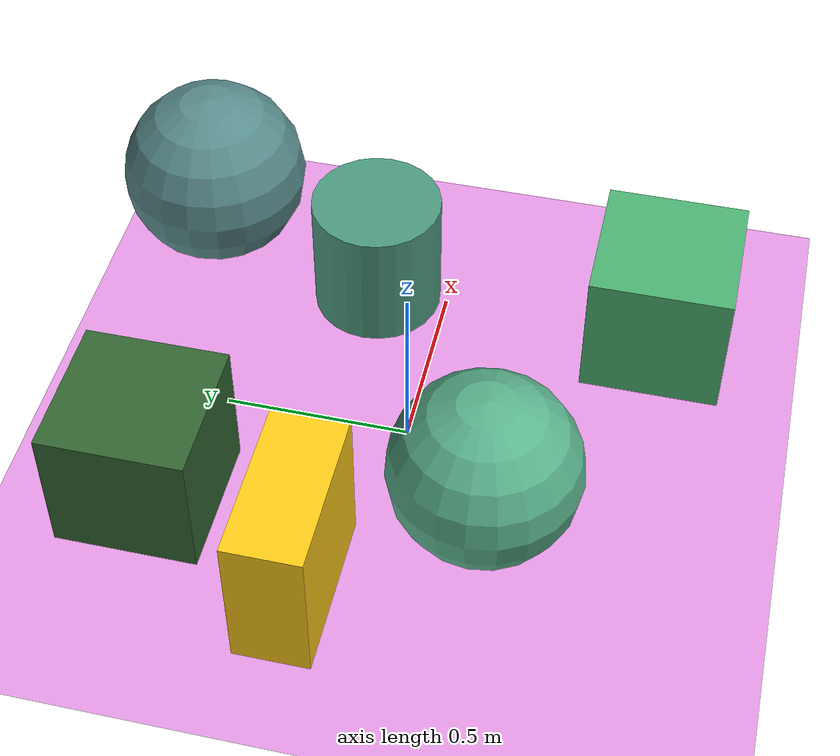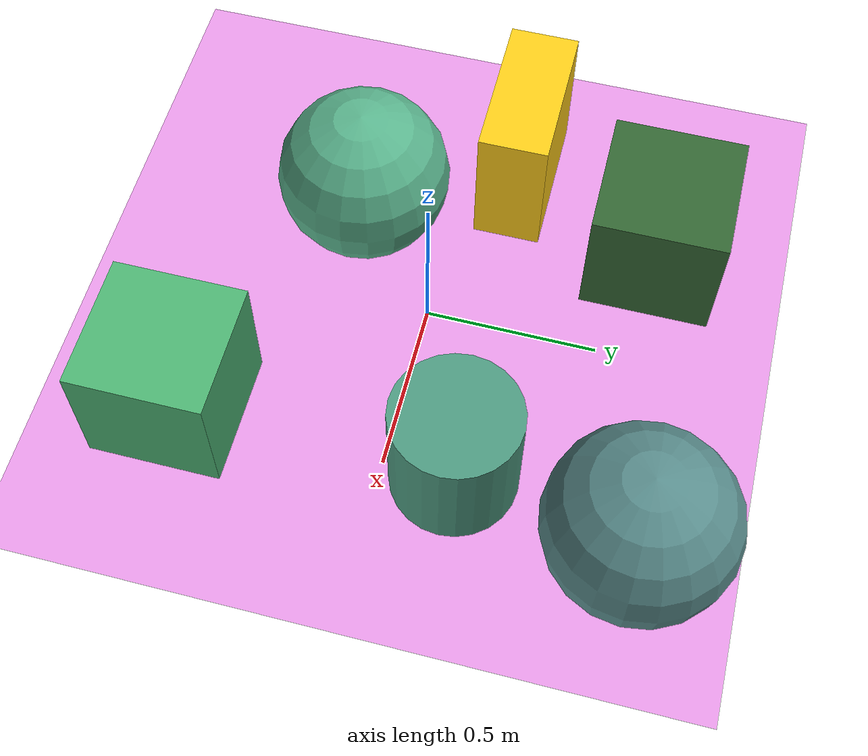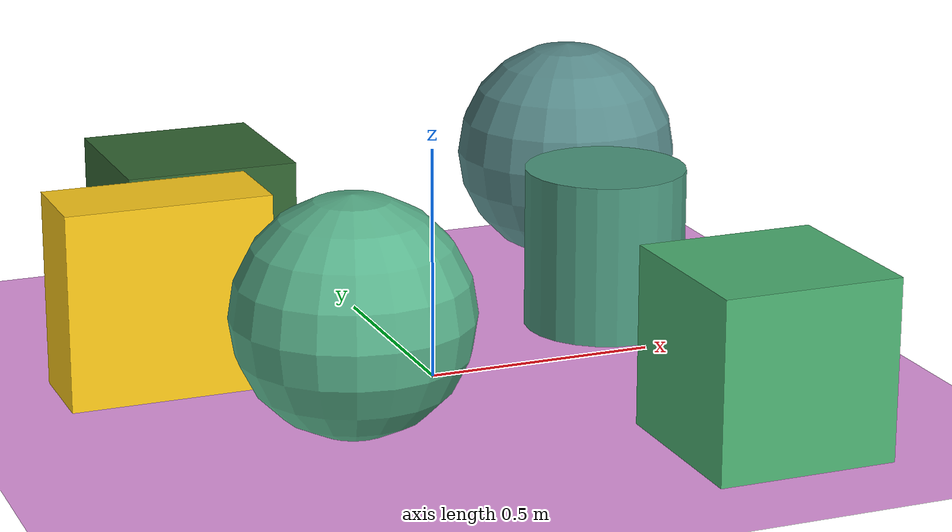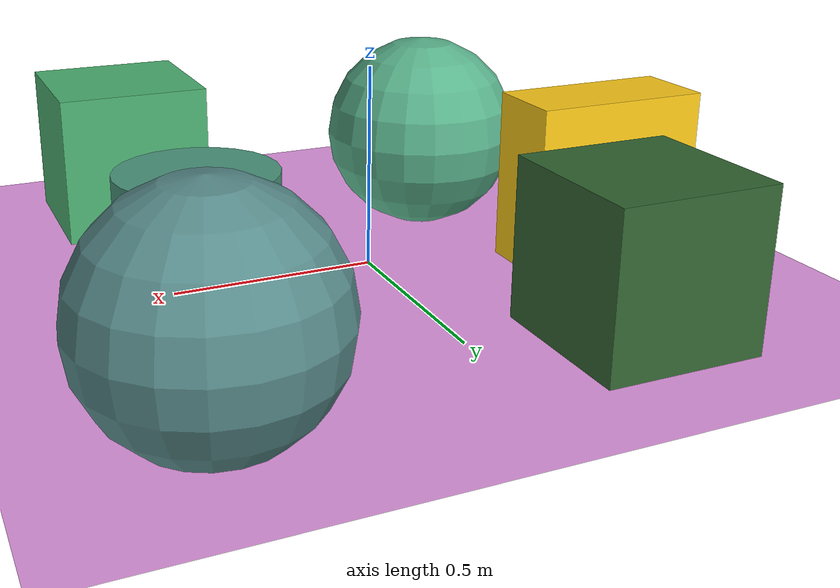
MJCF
<mujoco>
   <asset>
<texture type="skybox" builtin="gradient" rgb1="0.3 0.6 0.2" rgb2="0.8 0.2 0.4" width="256" height="256"/>
<texture name="checker_0" builtin="checker" type="2d" rgb1="0.0 1.0 0.8" rgb2="0.6 0.4 0.1" width="200" height="200"/>
<texture name="flat_1" builtin="flat" rgb1="1.0 0.8 0.1" rgb2="1.0 0.8 0.1"  width="200" height="200"/>
<texture name="checker_2" builtin="checker" type="2d" rgb1="0.6 1.0 0.2" rgb2="0.1 0.4 0.9" width="200" height="200"/>
<texture name="checker_3" builtin="checker" type="2d" rgb1="0.2 0.8 0.5" rgb2="0.4 0.4 0.5" width="200" height="200"/>
<texture name="flat_4" builtin="flat" rgb1="0.2 0.4 0.2" rgb2="0.2 0.4 0.2"  width="200" height="200"/>
<texture name="gradient_5" builtin="gradient" rgb1="0.1 0.3 0.4" rgb2="0.6 0.8 0.7" width="200" height="200"/><material name="checker_0_mat" reflectance="0" texrepeat="3 3" texture="checker_0" texuniform="false" />
<material name="flat_1_mat" reflectance="0" texture="flat_1" texuniform="true"/>
<material name="checker_2_mat" reflectance="0" texrepeat="7 7" texture="checker_2" texuniform="false" />
<material name="checker_3_mat" reflectance="0" texrepeat="7 7" texture="checker_3" texuniform="false" />
<material name="flat_4_mat" reflectance="0" texture="flat_4" texuniform="true"/>
<material name="gradient_5_mat" reflectance="0" texture="gradient_5" texuniform="true"/>
   </asset>

   <worldbody>
      <light diffuse=".9 .9 .9" pos="0 0 3" dir="0 0 -1"/>
     <geom type="plane" size="1 1 0.1" rgba="0.9 0.6 0.9 1"/>
<geom type="box" pos="0.47 -0.61 0.19" size="0.19 0.19 0.19" material="checker_0_mat" />
<geom type="box" pos="-0.55 0.16 0.21" size="0.22 0.1 0.21" material="flat_1_mat" />
<geom type="sphere" pos="-0.27 -0.26 0.25" size="0.25 0.25 0.25" material="checker_2_mat" />
<geom type="cylinder" pos="0.49 0.2 0.18" size="0.18 0.18 0.18" material="checker_3_mat" />
<geom type="box" pos="-0.35 0.61 0.19" size="0.19 0.19 0.19" material="flat_4_mat" />
<geom type="sphere" pos="0.62 0.71 0.26" size="0.26 0.26 0.26" material="gradient_5_mat" /><camera euler="60 0 180" fovy="60" name="camera_a" pos="0 -1.5 1"></camera>   </worldbody>
</mujoco>
